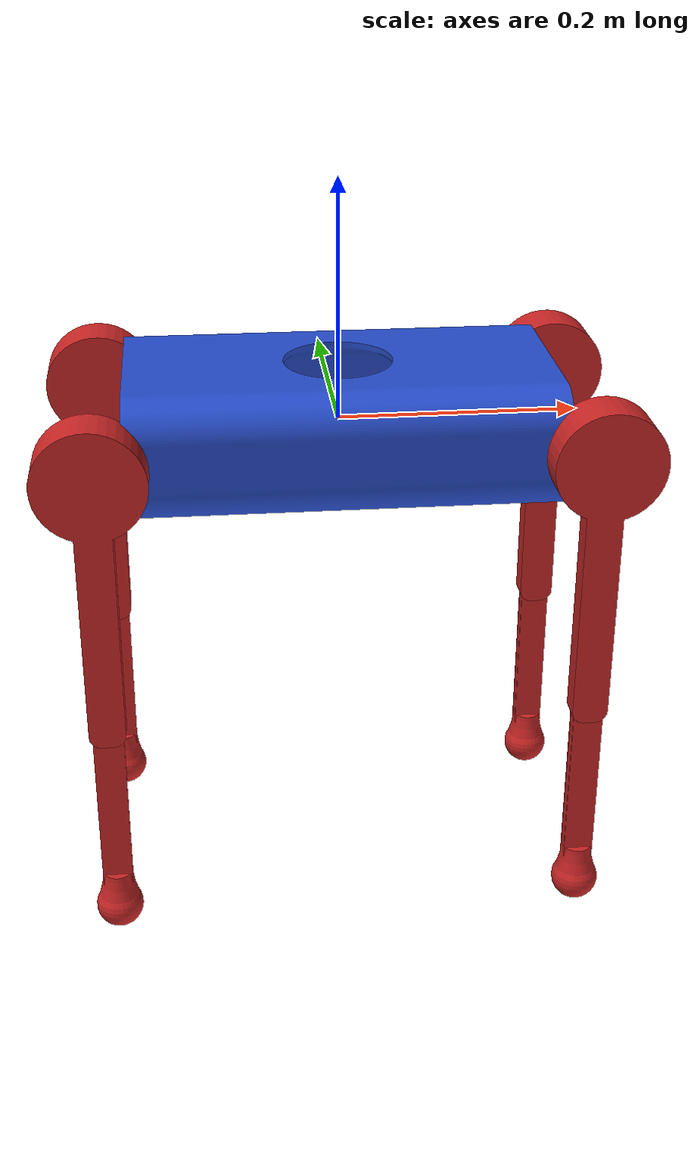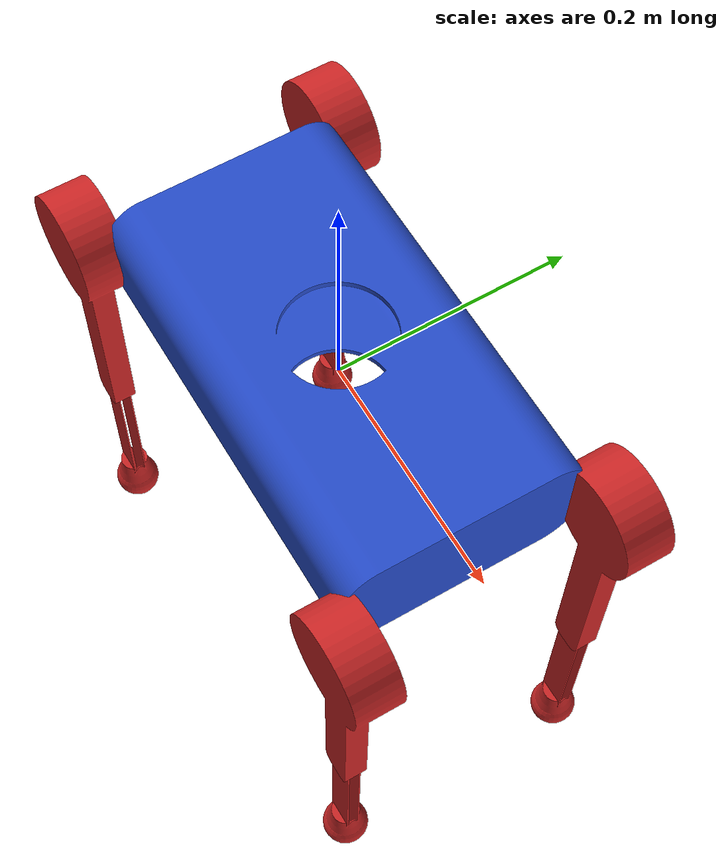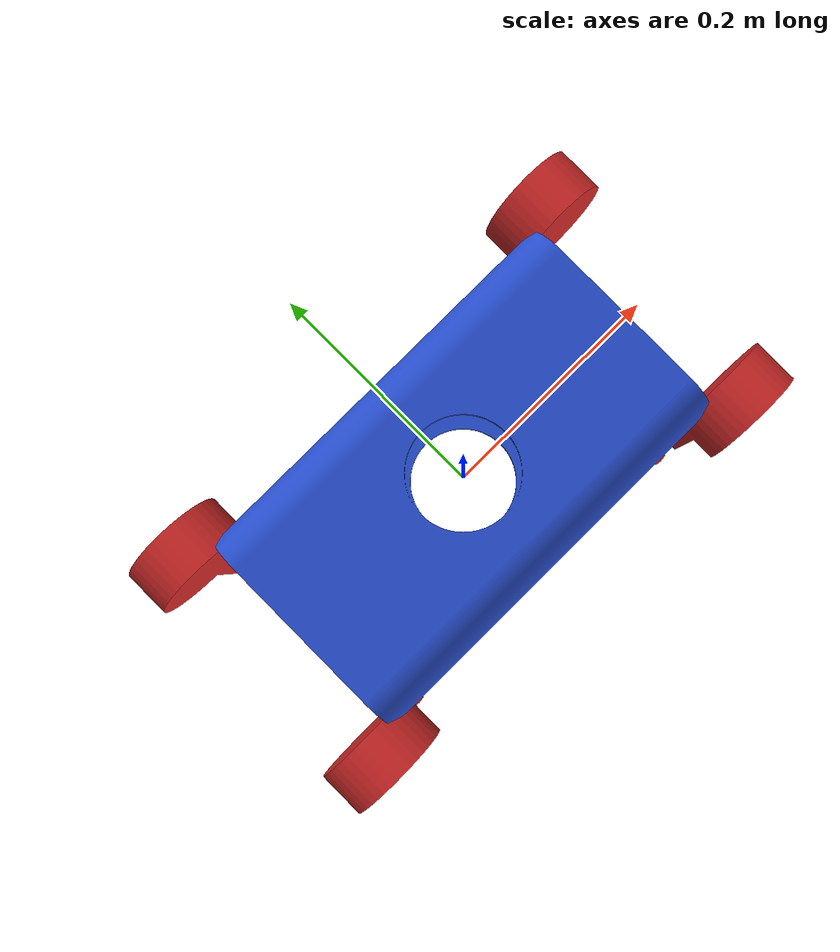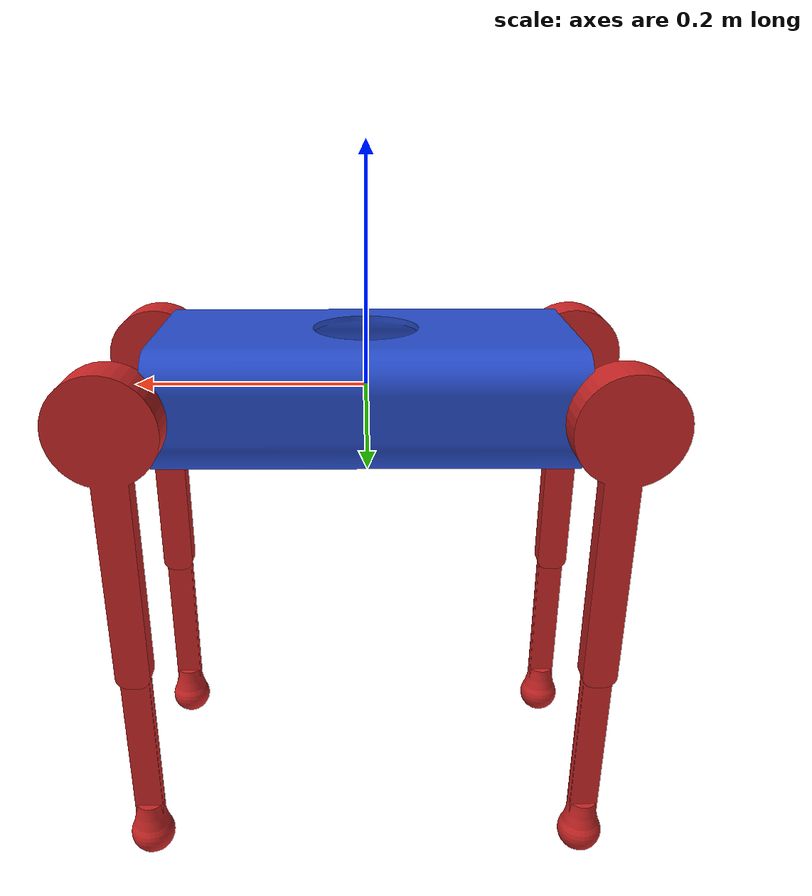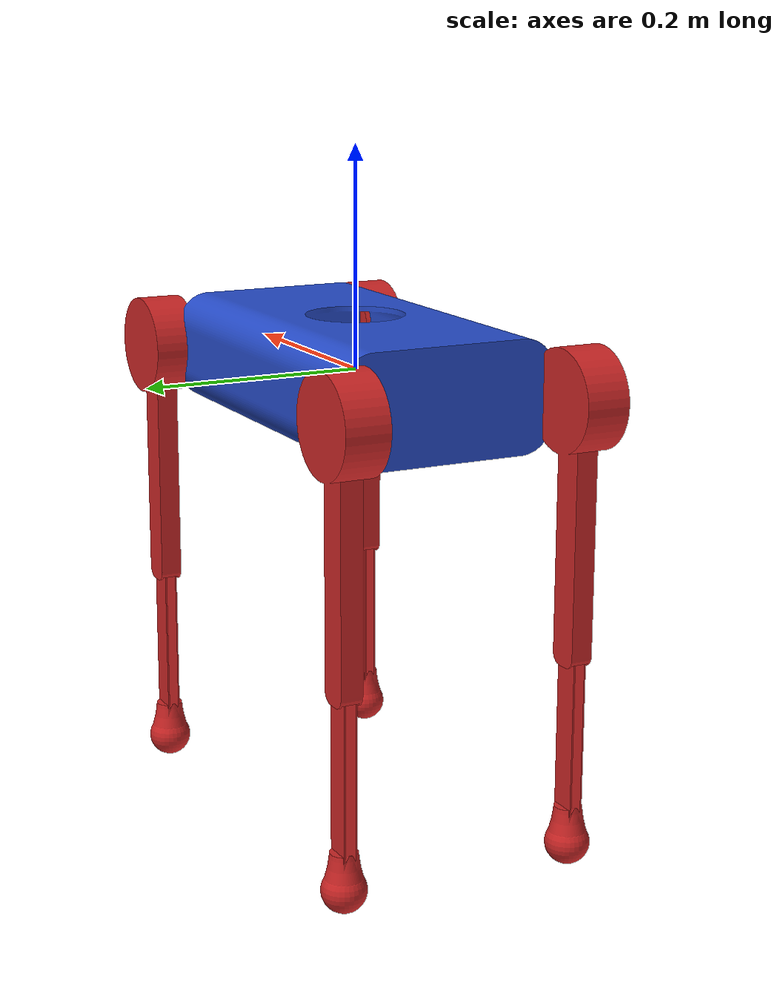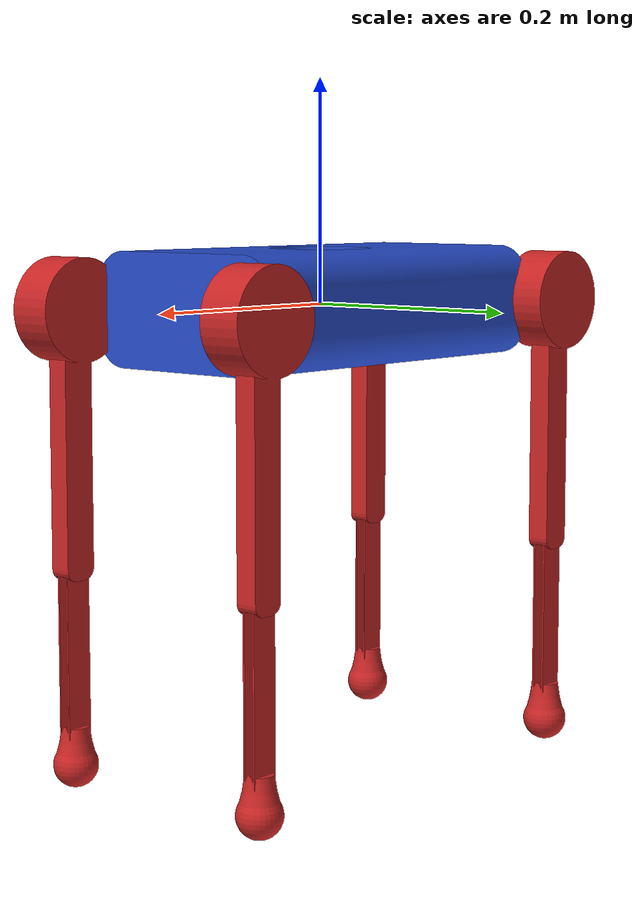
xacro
<?xml version="1.0"?>
<robot name="quadrupedal_robot2" xmlns:xacro="https://ros.org/wiki/xacro">

	<xacro:property name="PI" value="3.14159"/>
	<xacro:property name="PATH" value=""/>

	<xacro:macro name="link_macro" params="name inertialOrigin ixx ixy ixz iyy iyz izz mass filename color">
		<link name="${name}">
			<inertial>
				<origin xyz="${inertialOrigin}" rpy="0 0 0"/>
				<mass value="${mass}"/>
				<inertia ixx="${ixx}" ixy="${ixy}"  ixz="${ixz}" iyy="${iyy}" iyz="${iyz}" izz="${izz}"/>
			</inertial>
			<visual>
				<geometry>
					<mesh filename="${filename}"/>
				</geometry>
			</visual>
			<collision>
				<geometry>
					<mesh filename="${filename}"/>
				</geometry>
			</collision>
		</link>
		<gazebo reference="${name}">
			<mu1 value="1.0"/>
			<mu2 value="2.0"/>
			<kp value="1000000"/>
			<kd value="1.0"/>
			<material>Gazebo/${color}</material>
		</gazebo>
	</xacro:macro>

	<xacro:macro name="joint_macro" params="name axis xyz rpy parent child type">
		<joint name="${name}" type="${type}">
			<parent link="${parent}"/>
			<child link="${child}"/>
			<axis xyz="${axis}"/>
			<origin xyz="${xyz}" rpy="${rpy}"/>
			<dynamics damping="0.02"/>
			<limit lower="-2.5" upper="2.5" effort="8.0" velocity="6.0"/>
		</joint>
	</xacro:macro>

	<xacro:macro name="trans_macro" params="name joint_name act_name">
		<transmission name="${name}">
			<type>transmission_interface/SimpleTransmission</type>
			<joint name="${joint_name}">
				<hardwareInterface>hardware_interface/EffortJointInterface</hardwareInterface>
			</joint>
			<actuator name="${act_name}">
				<hardwareInterface>hardware_interface/EffortJointInterface</hardwareInterface>
				<mechanismReduction>1</mechanismReduction>
			</actuator>
		</transmission>
	</xacro:macro>

	<xacro:link_macro name="base" inertialOrigin="0 0 0" ixx="0.017409405067" ixy="0.0"  ixz="0.0" iyy="0.043070296402" iyz="0.0" izz="0.052179256932" mass="2.792" filename="${PATH}/meshes/stl/base.stl" color="Blue"/>

	<!-- right fore leg -->
	<xacro:joint_macro name="rf_abad_joint" axis="1 0 0" xyz="0.2 -0.11 0.0" rpy="0.0 0.0 0.0" parent="base" child="rf_abduction_link" type="revolute"/>
	<xacro:trans_macro name="rf_abad_joint_trans" joint_name="rf_abad_joint" act_name="rf_abad_motor"/>
	<xacro:link_macro name="rf_abduction_link" inertialOrigin="0.0 0.0 0.0" ixx="0.0000009" ixy="0.0" ixz="0.0" iyy="0.0000036" iyz="0.0" izz="0.00000306" mass="0.0216" filename="${PATH}/meshes/stl/abduction_link.stl" color="Red"/>

	<xacro:joint_macro name="rf_hip_joint" axis="0 1 0" xyz="0.0 0.0 0.0" rpy="0.0 0.0 0.0" parent="rf_abduction_link" child="rf_upper_link" type="revolute"/>
	<xacro:trans_macro name="rf_hip_joint_trans" joint_name="rf_hip_joint" act_name="rf_hip_motor"/>
	<xacro:link_macro name="rf_upper_link" inertialOrigin="0.0 0.0 -0.033267" ixx="0.001895275931" ixy="0.0" ixz="0.0" iyy="0.002059293642" iyz="0.0" izz="0.000282134530" mass="0.376687" filename="${PATH}/meshes/stl/upper_link.stl" color="Red"/>

	<xacro:joint_macro name="rf_knee_joint" axis="0 1 0" xyz="0.0 0.0 -0.2" rpy="0.0 0.0 0.0" parent="rf_upper_link" child="rf_lower_link" type="revolute"/>
	<xacro:trans_macro name="rf_knee_joint_trans" joint_name="rf_knee_joint" act_name="rf_knee_motor"/>
	<xacro:link_macro name="rf_lower_link" inertialOrigin="0 0 -0.155989" ixx="0.000664235357" ixy="0.0" ixz="0.0" iyy="0.000664515268" iyz="0.0" izz="0.000019650311" mass="0.140882" filename="${PATH}/meshes/stl/lower_link.stl" color="Red"/>

	<!-- left fore leg -->
	<xacro:joint_macro name="lf_abad_joint" axis="1 0 0" xyz="0.2 0.11 0.0" rpy="0.0 0.0 0.0" parent="base" child="lf_abduction_link" type="revolute"/>
	<xacro:trans_macro name="lf_abad_joint_trans" joint_name="lf_abad_joint" act_name="lf_abad_motor"/>
	<xacro:link_macro name="lf_abduction_link" inertialOrigin="0.0 0.0 0.0" ixx="0.0000009" ixy="0.0" ixz="0.0" iyy="0.0000036" iyz="0.0" izz="0.00000306" mass="0.0216" filename="${PATH}/meshes/stl/abduction_link.stl" color="Red"/>

	<xacro:joint_macro name="lf_hip_joint" axis="0 1 0" xyz="0.0 0.0 0.0" rpy="0.0 0.0 0.0" parent="lf_abduction_link" child="lf_upper_link" type="revolute"/>
	<xacro:trans_macro name="lf_hip_joint_trans" joint_name="lf_hip_joint" act_name="lf_hip_motor"/>
	<xacro:link_macro name="lf_upper_link" inertialOrigin="0.0 0.0 -0.033267" ixx="0.001895275931" ixy="0.0" ixz="0.0" iyy="0.002059293642" iyz="0.0" izz="0.000282134530" mass="0.376687" filename="${PATH}/meshes/stl/upper_link.stl" color="Red"/>

	<xacro:joint_macro name="lf_knee_joint" axis="0 1 0" xyz="0.0 0.0 -0.2" rpy="0.0 0.0 0.0" parent="lf_upper_link" child="lf_lower_link" type="revolute"/>
	<xacro:trans_macro name="lf_knee_joint_trans" joint_name="lf_knee_joint" act_name="lf_knee_motor"/>
	<xacro:link_macro name="lf_lower_link" inertialOrigin="0 0 -0.155989" ixx="0.000664235357" ixy="0.0" ixz="0.0" iyy="0.000664515268" iyz="0.0" izz="0.000019650311" mass="0.140882" filename="${PATH}/meshes/stl/lower_link.stl" color="Red"/>

	<!-- right hind leg -->
	<xacro:joint_macro name="rh_abad_joint" axis="1 0 0" xyz="-0.2 -0.11 0.0" rpy="0.0 0.0 0.0" parent="base" child="rh_abduction_link" type="revolute"/>
	<xacro:trans_macro name="rh_abad_joint_trans" joint_name="rh_abad_joint" act_name="rh_abad_motor"/>
	<xacro:link_macro name="rh_abduction_link" inertialOrigin="0.0 0.0 0.0" ixx="0.0000009" ixy="0.0" ixz="0.0" iyy="0.0000036" iyz="0.0" izz="0.00000306" mass="0.0216" filename="${PATH}/meshes/stl/abduction_link.stl" color="Red"/>

	<xacro:joint_macro name="rh_hip_joint" axis="0 1 0" xyz="0.0 0.0 0.0" rpy="0.0 0.0 0.0" parent="rh_abduction_link" child="rh_upper_link" type="revolute"/>
	<xacro:trans_macro name="rh_hip_joint_trans" joint_name="rh_hip_joint" act_name="rh_hip_motor"/>
	<xacro:link_macro name="rh_upper_link" inertialOrigin="0.0 0.0 -0.033267" ixx="0.001895275931" ixy="0.0" ixz="0.0" iyy="0.002059293642" iyz="0.0" izz="0.000282134530" mass="0.376687" filename="${PATH}/meshes/stl/upper_link.stl" color="Red"/>

	<xacro:joint_macro name="rh_knee_joint" axis="0 1 0" xyz="0.0 0.0 -0.2" rpy="0.0 0.0 0.0" parent="rh_upper_link" child="rh_lower_link" type="revolute"/>
	<xacro:trans_macro name="rh_knee_joint_trans" joint_name="rh_knee_joint" act_name="rh_knee_motor"/>
	<xacro:link_macro name="rh_lower_link" inertialOrigin="0 0 -0.155989" ixx="0.000664235357" ixy="0.0" ixz="0.0" iyy="0.000664515268" iyz="0.0" izz="0.000019650311" mass="0.140882" filename="${PATH}/meshes/stl/lower_link.stl" color="Red"/>

	<!-- left hind leg -->
	<xacro:joint_macro name="lh_abad_joint" axis="1 0 0" xyz="-0.2 0.11 0.0" rpy="0.0 0.0 0.0" parent="base" child="lh_abduction_link" type="revolute"/>
	<xacro:trans_macro name="lh_abad_joint_trans" joint_name="lh_abad_joint" act_name="lh_abad_motor"/>
	<xacro:link_macro name="lh_abduction_link" inertialOrigin="0.0 0.0 0.0" ixx="0.0000009" ixy="0.0" ixz="0.0" iyy="0.0000036" iyz="0.0" izz="0.00000306" mass="0.0216" filename="${PATH}/meshes/stl/abduction_link.stl" color="Red"/>

	<xacro:joint_macro name="lh_hip_joint" axis="0 1 0" xyz="0.0 0.0 0.0" rpy="0.0 0.0 0.0" parent="lh_abduction_link" child="lh_upper_link" type="revolute"/>
	<xacro:trans_macro name="lh_hip_joint_trans" joint_name="lh_hip_joint" act_name="lh_hip_motor"/>
	<xacro:link_macro name="lh_upper_link" inertialOrigin="0.0 0.0 -0.033267" ixx="0.001895275931" ixy="0.0" ixz="0.0" iyy="0.002059293642" iyz="0.0" izz="0.000282134530" mass="0.376687" filename="${PATH}/meshes/stl/upper_link.stl" color="Red"/>

	<xacro:joint_macro name="lh_knee_joint" axis="0 1 0" xyz="0.0 0.0 -0.2" rpy="0.0 0.0 0.0" parent="lh_upper_link" child="lh_lower_link" type="revolute"/>
	<xacro:trans_macro name="lh_knee_joint_trans" joint_name="lh_knee_joint" act_name="lh_knee_motor"/>
	<xacro:link_macro name="lh_lower_link" inertialOrigin="0 0 -0.155989" ixx="0.000664235357" ixy="0.0" ixz="0.0" iyy="0.000664515268" iyz="0.0" izz="0.000019650311" mass="0.140882" filename="${PATH}/meshes/stl/lower_link.stl" color="Red"/>

</robot>
